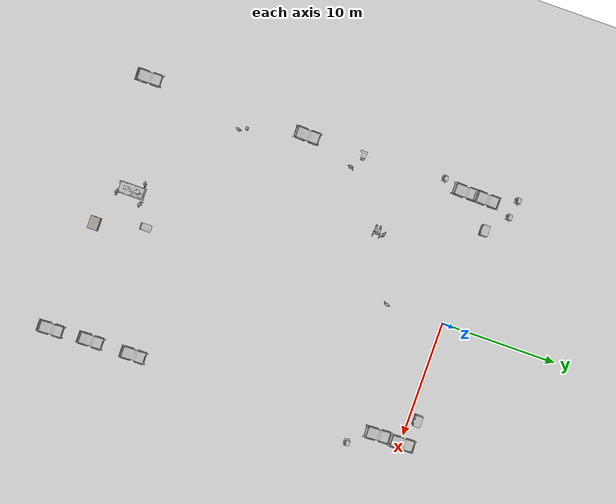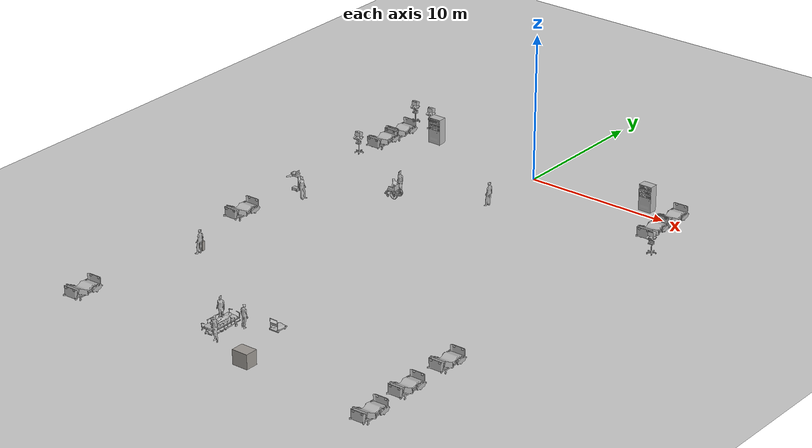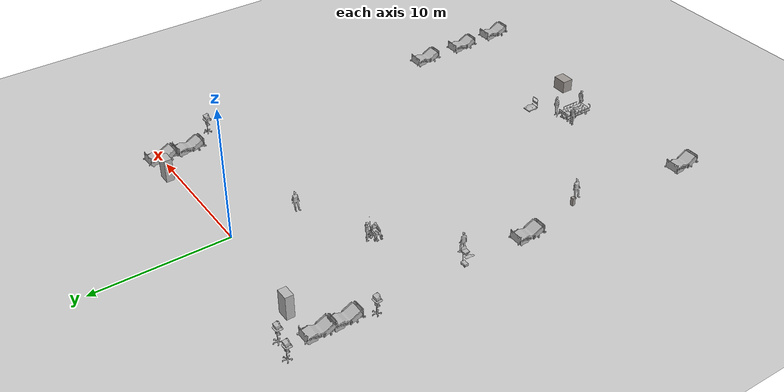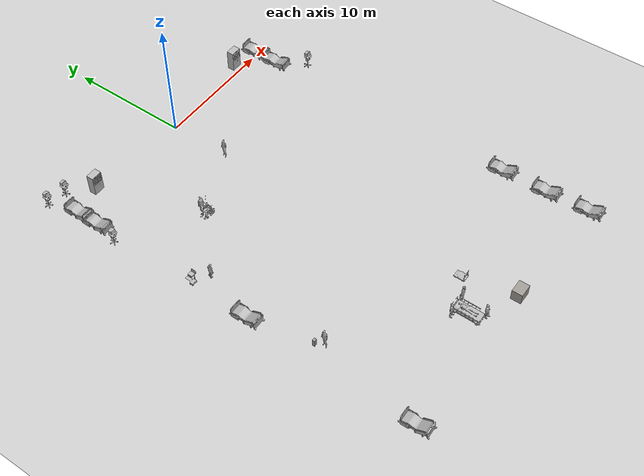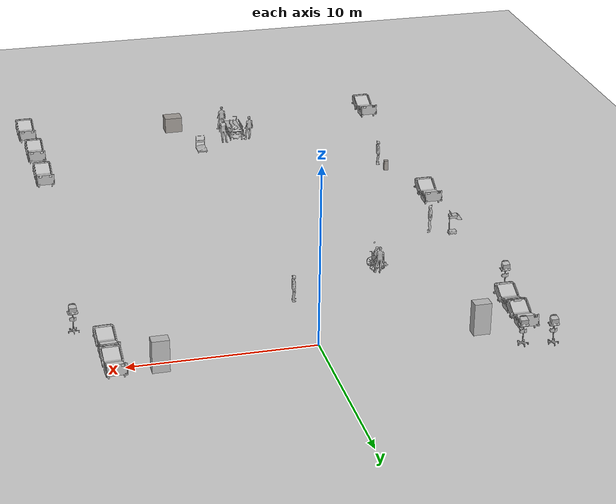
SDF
<sdf version="1.6">
 <world name="world">
  <gravity>0 0 -9.8</gravity>
  <physics default="0" name="default_physics" type="ode">
   <max_step_size>0.001</max_step_size>
   <real_time_factor>1</real_time_factor>
   <real_time_update_rate>1000</real_time_update_rate>
  </physics>
  <scene><ambient>0.6 0.6 0.6 1</ambient><background>0.4 0.4 0.4 1</background><shadows>false</shadows></scene>
  <include><uri>model://sun</uri></include>
  <include><uri>model://ground_plane</uri><pose>0 0 -0.1 0 -0 0</pose></include>
  <model name="CGMClassic_1">
   <include>
    <uri>model://CGMClassic</uri>
    <static>true</static>
    <pose>11.1777 -27.4129 0 0 0 -3.13719</pose>
   </include>
  </model>
  <model name="CGMClassic_2">
   <include>
    <uri>model://CGMClassic</uri>
    <static>true</static>
    <pose>11.1179 -23.6493 0 0 0 -3.13599</pose>
   </include>
  </model>
  <model name="Scrubs_1">
   <include><uri>model://Scrubs</uri><static>true</static><pose>-9.61916 -21.5112 0 0 0 -3.12353</pose></include>
  </model>
  <model name="Scrubs_2">
   <include><uri>model://Scrubs</uri><static>true</static><pose>0.054597 -4.94151 0 0 -0 3.12413</pose></include>
  </model>
  <model name="PatientWheelChair_1">
   <include>
    <uri>model://PatientWheelChair</uri>
    <static>true</static>
    <pose>-5.46091 -7.76423 0 0 0 -1.54828</pose>
   </include>
  </model>
  <model name="Scrubs_3">
   <include><uri>model://Scrubs</uri><static>true</static><pose>-5.38513 -7.17474 0 0 0 -1.63757</pose></include>
  </model>
  <model name="CGMClassic_3">
   <include>
    <uri>model://CGMClassic</uri>
    <static>true</static>
    <pose>-11.2304 -30.1134 0 0 0 -3.11834</pose>
   </include>
  </model>
  <model name="CGMClassic_4">
   <include>
    <uri>model://CGMClassic</uri>
    <static>true</static>
    <pose>-11.0878 -16.00992 0 0 -0 3.1351</pose>
   </include>
  </model>
  <model name="CGMClassic_5">
   <include>
    <uri>model://CGMClassic</uri>
    <static>true</static>
    <pose>-11.0106 -0.0495 -0.008203 -0.035019 -0.000392 3.13388</pose>
   </include>
  </model>
  <model name="CGMClassic_6">
   <include>
    <uri>model://CGMClassic</uri>
    <static>true</static>
    <pose>-11.025 -1.89665 0 -0.035021 1.8e-05 -3.13762</pose>
   </include>
  </model>
  <model name="TrolleyBedPatient_1">
   <include>
    <uri>model://TrolleyBedPatient</uri>
    <static>true</static>
    <pose>-1.83202 -28.2612 0 0 -0 0</pose>
   </include>
  </model>
  <model name="Scrubs_4">
   <include><uri>model://Scrubs</uri><static>true</static><pose>-0.93616 -27.2252 0 0 -0 1.62572</pose></include>
  </model>
  <model name="Scrubs_5">
   <include>
    <uri>model://Scrubs</uri>
    <static>true</static>
    <pose>-2.66657 -27.3733 0 -0.002221 -0.006608 -1.24025</pose>
   </include>
  </model>
  <model name="CGMClassic_7">
   <include>
    <uri>model://CGMClassic</uri>
    <static>true</static>
    <pose>10.6166 0.06291 -0.008203 -0.03501 0.000885 -3.11285</pose>
   </include>
  </model>
  <model name="CGMClassic_8">
   <include>
    <uri>model://CGMClassic</uri>
    <static>true</static>
    <pose>10.6006 -2.09044 -0.008203 -0.035003 0.001133 -3.10576</pose>
   </include>
  </model>
  <model name="ParkingTrolleyMin_1">
   <include>
    <uri>model://ParkingTrolleyMin</uri>
    <static>true</static>
    <pose>0.715846 -26.1496 -0.000121 -1e-06 -0 0</pose>
   </include>
  </model>
  <model name="Scrubs_6">
   <include><uri>model://Scrubs</uri><static>true</static><pose>-1.29468 -29.4093 0 0 0 -1.51066</pose></include>
  </model>
  <model name="CGMClassic_9">
   <include>
    <uri>model://CGMClassic</uri>
    <static>true</static>
    <pose>11.3613 -30.8867 0 0 0 -3.12292</pose>
   </include>
  </model>
  <model name="XRayMachine_1">
   <include><uri>model://XRayMachine</uri><static>true</static><pose>1.79424 -30.3329 0 0 -0 0</pose></include>
  </model>
  <model name="BloodPressureMonitor_1">
   <include>
    <uri>model://BloodPressureMonitor</uri>
    <static>true</static>
    <pose>-9.96258 -20.9361 0 0 -0 0</pose>
   </include>
  </model>
  <model name="BMWCart_1">
   <include><uri>model://BMWCart</uri><static>true</static><pose>-10.931 -10.9483 0 0 -0 0</pose></include>
  </model>
  <model name="Scrubs_7">
   <include><uri>model://Scrubs</uri><static>true</static><pose>-9.75875 -11.67552 0 0 -0 0</pose></include>
  </model>
  <model name="BPCart_1">
   <include>
    <uri>model://BPCart</uri>
    <static>true</static>
    <pose>-10.1788 2.173 0.003446 1e-06 -0 0.003096</pose>
   </include>
  </model>
  <model name="BPCart_2">
   <include><uri>model://BPCart</uri><static>true</static><pose>12.0072 -4.35235 0 0 -0 0</pose></include>
  </model>
  <model name="BPCart_3">
   <include><uri>model://BPCart</uri><static>true</static><pose>-11.7236 2.4294 0 0 -0 0</pose></include>
  </model>
  <model name="BPCart_4">
   <include>
    <uri>model://BPCart</uri>
    <static>true</static>
    <pose>-11.4703 -3.94001 0.003446 1e-06 -0 0.003096</pose>
   </include>
  </model>
  <model name="VendingMachine_1">
   <include>
    <uri>model://VendingMachine</uri>
    <static>true</static>
    <pose>-8.45694 0.63064 0 0 -0 0</pose>
   </include>
  </model>
  <model name="VendingMachine_2">
   <include>
    <uri>model://VendingMachine</uri>
    <static>true</static>
    <pose>8.35378 0.64852 -3e-06 -6e-06 0 0</pose>
   </include>
  </model>
 </world>
</sdf>

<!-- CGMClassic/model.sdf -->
<sdf version="1.6">
  <model name="CGMClassic">
   <static>true</static>
    <link name="body">
      <pose>0 0 0 0 0 0</pose>

      <visual name="visual">
        <geometry>
          <mesh>
            <uri>model://CGMClassic/meshes/CGMClassic.obj</uri>
            <scale>0.01 0.01 0.01</scale>
          </mesh>
        </geometry>
      </visual>

      <collision name="collision">
        <geometry>
          <mesh>
            <uri>model://CGMClassic/meshes/CGMClassic.obj</uri>
            <scale>0.01 0.01 0.01</scale>
          </mesh>
        </geometry>
      </collision>

    </link>
  </model>
</sdf>

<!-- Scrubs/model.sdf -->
<sdf version="1.6">
  <model name='Scrubs'>
   <static>true</static>
    <link name="body">
      <pose>0 0 0 0 0 0</pose>

      <visual name="visual">
        <geometry>
          <mesh>
            <uri>model://Scrubs/meshes/scrubs.obj</uri>
          </mesh>
        </geometry>
      </visual>

      <collision name="collision">
        <geometry>
          <mesh>
            <uri>model://Scrubs/meshes/Scrubs_Col.obj</uri>
          </mesh>
        </geometry>
      </collision>

    </link>
  </model>
</sdf>

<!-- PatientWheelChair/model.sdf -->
<sdf version="1.6">
  <model name="PatientWheelChair">
   <static>true</static>
    <link name="body">
      <pose>0 0 0 0 0 0</pose>

      <visual name="visual">
        <geometry>
          <mesh>
            <uri>model://PatientWheelChair/meshes/PatientWheelChair.obj</uri>
          </mesh>
        </geometry>
      </visual>

      <collision name="collision">
        <geometry>
          <mesh>
            <uri>model://PatientWheelChair/meshes/PatientWheelChair_Col.obj</uri>
          </mesh>
        </geometry>
      </collision>

    </link>
  </model>
</sdf>

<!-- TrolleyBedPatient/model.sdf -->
<sdf version="1.6">
  <model name="TrolleyBedPatient">
   <static>true</static>
    <link name="body">
      <pose>0 0 0 0 0 0</pose>

      <visual name="visual">
        <geometry>
          <mesh>
            <uri>model://TrolleyBedPatient/meshes/TrolleyBedPatient.obj</uri>
          </mesh>
        </geometry>
      </visual>

      <collision name="collision">
        <geometry>
          <mesh>
            <uri>model://TrolleyBedPatient/meshes/TrolleyBedPatient.obj</uri>
          </mesh>
        </geometry>
      </collision>

    </link>
  </model>
</sdf>

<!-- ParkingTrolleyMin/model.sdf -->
<sdf version="1.6">
  <model name="ParkingTrolleyMin">
    <link name="body">
      <pose>0 0 0 0 0 0</pose>

        <visual name="visual">
          <pose>0 0 0 0 0 0</pose>
          <geometry>
            <mesh><uri>model://ParkingTrolleyMin/meshes/trolleymin.obj</uri></mesh>
          </geometry>
        </visual>

        <collision name="collision">
          <pose>0 0 0 0 0 0</pose>
          <geometry>
            <mesh><uri>model://ParkingTrolleyMin/meshes/trolleymin.obj</uri></mesh>
          </geometry>
        </collision>

    </link>
  </model>
</sdf>

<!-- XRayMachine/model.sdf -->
<sdf version="1.6">
  <model name="XRayMachine">
    <static>true</static>
    <link name="link">
      <collision name="col">
        <geometry>
          <box>
            <size>1.1 0.85 1.65</size>
          </box>
        </geometry>
      </collision>
      <visual name="vis">
        <geometry>
          <box>
            <size>1.1 0.85 1.65</size>
          </box>
        </geometry>
        <material>
          <ambient>0.62 0.6 0.58 1</ambient>
          <diffuse>0.62 0.6 0.58 1</diffuse>
        </material>
      </visual>
    </link>
  </model>
</sdf>

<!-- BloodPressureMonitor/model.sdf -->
<sdf version="1.6">
  <model name="BloodPressureMonitor">
    <static>true</static>
    <link name="link">
      <collision name="col">
        <geometry>
          <box>
            <size>0.25 0.22 0.95</size>
          </box>
        </geometry>
      </collision>
      <visual name="vis">
        <geometry>
          <box>
            <size>0.25 0.22 0.95</size>
          </box>
        </geometry>
        <material>
          <ambient>0.62 0.6 0.58 1</ambient>
          <diffuse>0.62 0.6 0.58 1</diffuse>
        </material>
      </visual>
    </link>
  </model>
</sdf>

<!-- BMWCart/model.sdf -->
<sdf version="1.6">
  <model name='BMWCart'>
    <link name="body">
      <pose>0 0 0 0 0 0</pose>

      <visual name="visual">
        <geometry>
          <mesh>
            <uri>model://BMWCart/meshes/Cart_BMW.obj</uri>
          </mesh>
        </geometry>
      </visual>

      <collision name="collision">
        <geometry>
          <mesh>
            <uri>model://BMWCart/meshes/Cart_BMW_Col.obj</uri>
          </mesh>
        </geometry>
      </collision>

    </link>
  </model>
</sdf>

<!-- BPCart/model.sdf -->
<sdf version="1.6">
  <model name='BPCart'>
    <link name="body">
      <pose>0 0 0 0 0 0</pose>

      <visual name="visual">
        <geometry>
          <mesh>
            <uri>model://BPCart/meshes/Cart_BP.obj</uri>
          </mesh>
        </geometry>
      </visual>

      <collision name="collision">
        <geometry>
          <mesh>
            <uri>model://BPCart/meshes/Cart_BP_Col.obj</uri>
          </mesh>
        </geometry>
      </collision>

    </link>
  </model>
</sdf>

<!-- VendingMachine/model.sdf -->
<sdf version="1.6">
  <model name="VendingMachine">
    <link name="body">
      <pose>0 0 0 0 0 0</pose>

      <visual name="visual">
        <geometry>
          <mesh>
            <uri>model://VendingMachine/meshes/vend.obj</uri>
          </mesh>
        </geometry>
      </visual>

      <collision name="collision">
        <geometry>
          <mesh>
            <uri>model://VendingMachine/meshes/vend.obj</uri>
          </mesh>
        </geometry>
      </collision>

    </link>
  </model>
</sdf>
